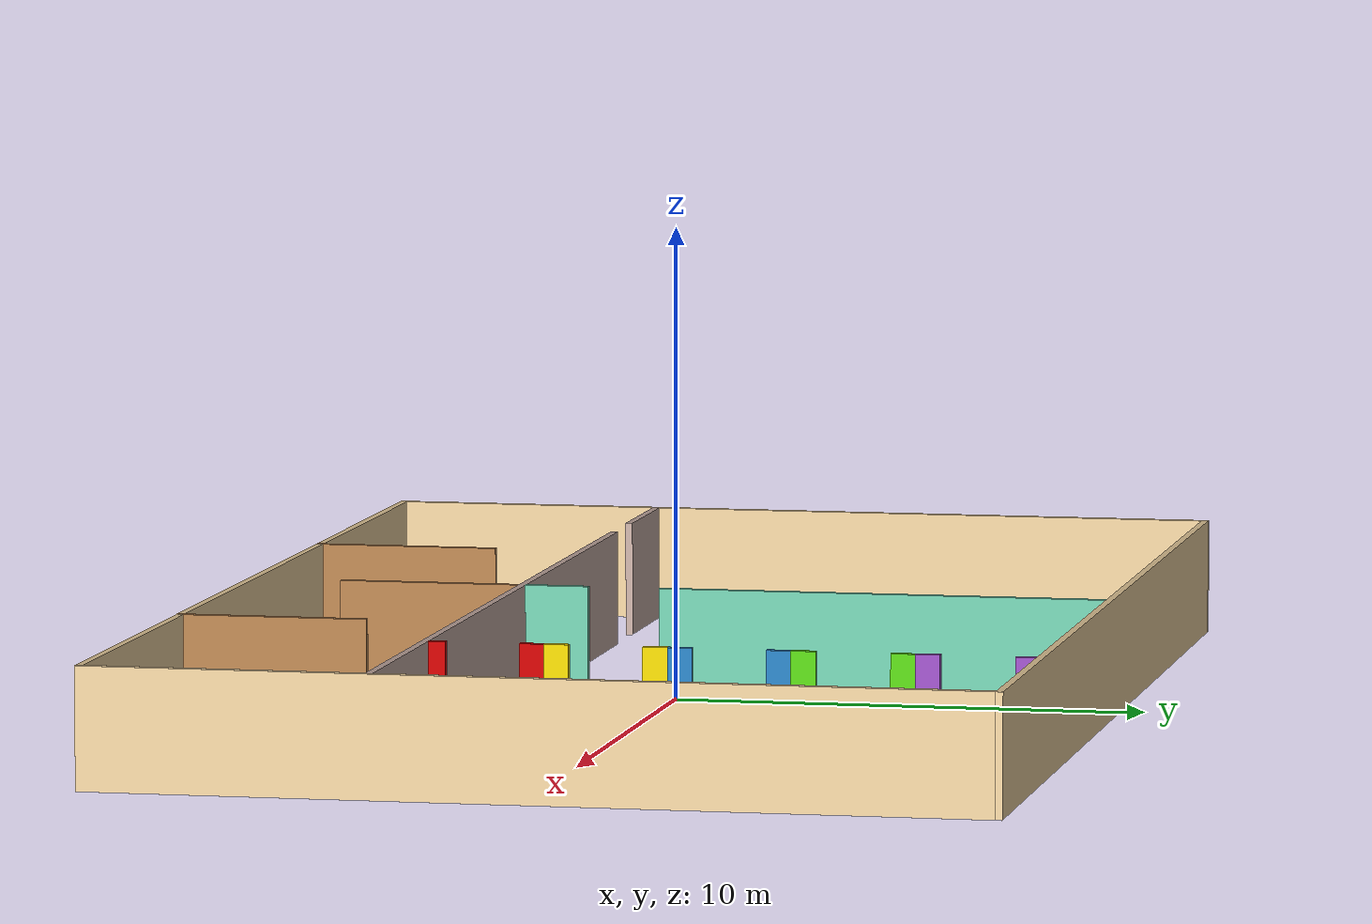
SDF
<?xml version='1.0'?>
<sdf version='1.6'>
  <model name='world1'>
    <pose frame=''>1.038 0.236278 0 0 -0 0</pose>
    <link name='Wall_0'>
      <collision name='Wall_0_Collision'>
        <geometry>
          <box>
            <size>28 0.15 2.5</size>
          </box>
        </geometry>
        <pose frame=''>0 0 1.25 0 -0 0</pose>
      </collision>
      <visual name='Wall_0_Visual'>
        <pose frame=''>0 0 1.25 0 -0 0</pose>
        <geometry>
          <box>
            <size>28 0.15 2.5</size>
          </box>
        </geometry>
        <material>
          <script>
            <uri>file://media/materials/scripts/gazebo.material</uri>
            <name>Gazebo/Grey</name>
          </script>
          <ambient>0.921569 0.807843 0.615686 1</ambient>
        </material>
        <meta>
          <layer>0</layer>
        </meta>
      </visual>
      <pose frame=''>0 -9.175 0 0 -0 0</pose>
    </link>
    <link name='Wall_10'>
      <collision name='Wall_10_Collision'>
        <geometry>
          <box>
            <size>18.5 0.15 2.5</size>
          </box>
        </geometry>
        <pose frame=''>0 0 1.25 0 -0 0</pose>
      </collision>
      <visual name='Wall_10_Visual'>
        <pose frame=''>0 0 1.25 0 -0 0</pose>
        <geometry>
          <box>
            <size>18.5 0.15 2.5</size>
          </box>
        </geometry>
        <material>
          <script>
            <uri>file://media/materials/scripts/gazebo.material</uri>
            <name>Gazebo/Grey</name>
          </script>
          <ambient>0.921569 0.807843 0.615686 1</ambient>
        </material>
        <meta>
          <layer>0</layer>
        </meta>
      </visual>
      <pose frame=''>-13.925 0 0 0 -0 1.5708</pose>
    </link>
    <link name='Wall_15'>
      <collision name='Wall_15_Collision'>
        <geometry>
          <box>
            <size>4 0.15 2.5</size>
          </box>
        </geometry>
        <pose frame=''>0 0 1.25 0 -0 0</pose>
      </collision>
      <visual name='Wall_15_Visual'>
        <pose frame=''>0 0 1.25 0 -0 0</pose>
        <geometry>
          <box>
            <size>4 0.15 2.5</size>
          </box>
        </geometry>
        <material>
          <script>
            <uri>file://media/materials/scripts/gazebo.material</uri>
            <name>Gazebo/Wood</name>
          </script>
          <ambient>1 1 1 1</ambient>
        </material>
        <meta>
          <layer>0</layer>
        </meta>
      </visual>
      <pose frame=''>6.05331 -7.24906 0 0 -0 -1.5708</pose>
    </link>
    <link name='Wall_19'>
      <collision name='Wall_19_Collision'>
        <geometry>
          <box>
            <size>4 0.15 2.5</size>
          </box>
        </geometry>
        <pose frame=''>0 0 1.25 0 -0 0</pose>
      </collision>
      <visual name='Wall_19_Visual'>
        <pose frame=''>0 0 1.25 0 -0 0</pose>
        <geometry>
          <box>
            <size>4 0.15 2.5</size>
          </box>
        </geometry>
        <material>
          <script>
            <uri>file://media/materials/scripts/gazebo.material</uri>
            <name>Gazebo/Wood</name>
          </script>
          <ambient>1 1 1 1</ambient>
        </material>
        <meta>
          <layer>0</layer>
        </meta>
      </visual>
      <pose frame=''>-5.91612 -7.23703 0 0 -0 -1.5708</pose>
    </link>
    <link name='Wall_22'>
      <collision name='Wall_22_Collision'>
        <geometry>
          <box>
            <size>4 0.15 2.5</size>
          </box>
        </geometry>
        <pose frame=''>0 0 1.25 0 -0 0</pose>
      </collision>
      <visual name='Wall_22_Visual'>
        <pose frame=''>0 0 1.25 0 -0 0</pose>
        <geometry>
          <box>
            <size>4 0.15 2.5</size>
          </box>
        </geometry>
        <material>
          <script>
            <uri>file://media/materials/scripts/gazebo.material</uri>
            <name>Gazebo/Wood</name>
          </script>
          <ambient>1 1 1 1</ambient>
        </material>
        <meta>
          <layer>0</layer>
        </meta>
      </visual>
      <pose frame=''>0.043144 -5.25298 0 0 -0 -1.5708</pose>
    </link>
    <link name='Wall_28'>
      <collision name='Wall_28_Collision'>
        <geometry>
          <box>
            <size>0.5 0.15 2.5</size>
          </box>
        </geometry>
        <pose frame=''>0 0 1.25 0 -0 0</pose>
      </collision>
      <visual name='Wall_28_Visual'>
        <pose frame=''>0 0 1.25 0 -0 0</pose>
        <geometry>
          <box>
            <size>0.5 0.15 2.5</size>
          </box>
        </geometry>
        <material>
          <script>
            <uri>file://media/materials/scripts/gazebo.material</uri>
            <name>Gazebo/Grey</name>
          </script>
          <ambient>0.8 0 0 1</ambient>
        </material>
        <meta>
          <layer>0</layer>
        </meta>
      </visual>
      <pose frame=''>9.02175 -3.14695 0 0 -0 1.5708</pose>
    </link>
    <link name='Wall_3'>
      <collision name='Wall_3_Collision'>
        <geometry>
          <box>
            <size>3 0.15 2.5</size>
          </box>
        </geometry>
        <pose frame=''>0 0 1.25 0 -0 0</pose>
      </collision>
      <visual name='Wall_3_Visual'>
        <pose frame=''>0 0 1.25 0 -0 0</pose>
        <geometry>
          <box>
            <size>3 0.15 2.5</size>
          </box>
        </geometry>
        <material>
          <script>
            <uri>file://media/materials/scripts/gazebo.material</uri>
            <name>Gazebo/Grey</name>
          </script>
          <ambient>0.760784 0.662745 0.627451 1</ambient>
        </material>
        <meta>
          <layer>0</layer>
        </meta>
      </visual>
      <pose frame=''>-12.3883 -3.32417 0 0 -0 0</pose>
    </link>
    <link name='Wall_34'>
      <collision name='Wall_34_Collision'>
        <geometry>
          <box>
            <size>0.5 0.15 2.5</size>
          </box>
        </geometry>
        <pose frame=''>0 0 1.25 0 -0 0</pose>
      </collision>
      <visual name='Wall_34_Visual'>
        <pose frame=''>0 0 1.25 0 -0 0</pose>
        <geometry>
          <box>
            <size>0.5 0.15 2.5</size>
          </box>
        </geometry>
        <material>
          <script>
            <uri>file://media/materials/scripts/gazebo.material</uri>
            <name>Gazebo/Grey</name>
          </script>
          <ambient>0.8 0 0 1</ambient>
        </material>
        <meta>
          <layer>0</layer>
        </meta>
      </visual>
      <pose frame=''>9.01979 -1.12465 0 0 -0 1.5708</pose>
    </link>
    <link name='Wall_36'>
      <collision name='Wall_36_Collision'>
        <geometry>
          <box>
            <size>0.5 0.15 2.5</size>
          </box>
        </geometry>
        <pose frame=''>0 0 1.25 0 -0 0</pose>
      </collision>
      <visual name='Wall_36_Visual'>
        <pose frame=''>0 0 1.25 0 -0 0</pose>
        <geometry>
          <box>
            <size>0.5 0.15 2.5</size>
          </box>
        </geometry>
        <material>
          <script>
            <uri>file://media/materials/scripts/gazebo.material</uri>
            <name>Gazebo/Grey</name>
          </script>
          <ambient>0.337255 0.823529 0.0784314 1</ambient>
        </material>
        <meta>
          <layer>0</layer>
        </meta>
      </visual>
      <pose frame=''>9.01168 6.41814 0 0 -0 -1.5708</pose>
    </link>
    <link name='Wall_38'>
      <collision name='Wall_38_Collision'>
        <geometry>
          <box>
            <size>0.5 0.15 2.5</size>
          </box>
        </geometry>
        <pose frame=''>0 0 1.25 0 -0 0</pose>
      </collision>
      <visual name='Wall_38_Visual'>
        <pose frame=''>0 0 1.25 0 -0 0</pose>
        <geometry>
          <box>
            <size>0.5 0.15 2.5</size>
          </box>
        </geometry>
        <material>
          <script>
            <uri>file://media/materials/scripts/gazebo.material</uri>
            <name>Gazebo/Grey</name>
          </script>
          <ambient>0.152941 0.490196 0.745098 1</ambient>
        </material>
        <meta>
          <layer>0</layer>
        </meta>
      </visual>
      <pose frame=''>9.0128 3.9049 0 0 -0 -1.5708</pose>
    </link>
    <link name='Wall_40'>
      <collision name='Wall_40_Collision'>
        <geometry>
          <box>
            <size>0.5 0.15 2.5</size>
          </box>
        </geometry>
        <pose frame=''>0 0 1.25 0 -0 0</pose>
      </collision>
      <visual name='Wall_40_Visual'>
        <pose frame=''>0 0 1.25 0 -0 0</pose>
        <geometry>
          <box>
            <size>0.5 0.15 2.5</size>
          </box>
        </geometry>
        <material>
          <script>
            <uri>file://media/materials/scripts/gazebo.material</uri>
            <name>Gazebo/Grey</name>
          </script>
          <ambient>0.152941 0.490196 0.745098 1</ambient>
        </material>
        <meta>
          <layer>0</layer>
        </meta>
      </visual>
      <pose frame=''>9.01751 1.89182 0 0 -0 -1.5708</pose>
    </link>
    <link name='Wall_42'>
      <collision name='Wall_42_Collision'>
        <geometry>
          <box>
            <size>0.5 0.15 2.5</size>
          </box>
        </geometry>
        <pose frame=''>0 0 1.25 0 -0 0</pose>
      </collision>
      <visual name='Wall_42_Visual'>
        <pose frame=''>0 0 1.25 0 -0 0</pose>
        <geometry>
          <box>
            <size>0.5 0.15 2.5</size>
          </box>
        </geometry>
        <material>
          <script>
            <uri>file://media/materials/scripts/gazebo.material</uri>
            <name>Gazebo/Grey</name>
          </script>
          <ambient>0.337255 0.823529 0.0784314 1</ambient>
        </material>
        <meta>
          <layer>0</layer>
        </meta>
      </visual>
      <pose frame=''>9.01261 4.40317 0 0 -0 -1.5708</pose>
    </link>
    <link name='Wall_44'>
      <collision name='Wall_44_Collision'>
        <geometry>
          <box>
            <size>0.5 0.15 2.5</size>
          </box>
        </geometry>
        <pose frame=''>0 0 1.25 0 -0 0</pose>
      </collision>
      <visual name='Wall_44_Visual'>
        <pose frame=''>0 0 1.25 0 -0 0</pose>
        <geometry>
          <box>
            <size>0.5 0.15 2.5</size>
          </box>
        </geometry>
        <material>
          <script>
            <uri>file://media/materials/scripts/gazebo.material</uri>
            <name>Gazebo/Grey</name>
          </script>
          <ambient>0.929412 0.831373 0 1</ambient>
        </material>
        <meta>
          <layer>0</layer>
        </meta>
      </visual>
      <pose frame=''>9.0178 1.39306 0 0 -0 -1.5708</pose>
    </link>
    <link name='Wall_46'>
      <collision name='Wall_46_Collision'>
        <geometry>
          <box>
            <size>0.5 0.15 2.5</size>
          </box>
        </geometry>
        <pose frame=''>0 0 1.25 0 -0 0</pose>
      </collision>
      <visual name='Wall_46_Visual'>
        <pose frame=''>0 0 1.25 0 -0 0</pose>
        <geometry>
          <box>
            <size>0.5 0.15 2.5</size>
          </box>
        </geometry>
        <material>
          <script>
            <uri>file://media/materials/scripts/gazebo.material</uri>
            <name>Gazebo/Grey</name>
          </script>
          <ambient>0.929412 0.831373 0 1</ambient>
        </material>
        <meta>
          <layer>0</layer>
        </meta>
      </visual>
      <pose frame=''>9.01956 -0.626449 0 0 -0 -1.5708</pose>
    </link>
    <link name='Wall_56'>
      <collision name='Wall_56_Collision'>
        <geometry>
          <box>
            <size>0.5 0.15 2.5</size>
          </box>
        </geometry>
        <pose frame=''>0 0 1.25 0 -0 0</pose>
      </collision>
      <visual name='Wall_56_Visual'>
        <pose frame=''>0 0 1.25 0 -0 0</pose>
        <geometry>
          <box>
            <size>0.5 0.15 2.5</size>
          </box>
        </geometry>
        <material>
          <script>
            <uri>file://media/materials/scripts/gazebo.material</uri>
            <name>Gazebo/Grey</name>
          </script>
          <ambient>0.596078 0.305882 0.756863 1</ambient>
        </material>
        <meta>
          <layer>0</layer>
        </meta>
      </visual>
      <pose frame=''>9.00835 8.93069 0 0 -0 -1.5708</pose>
    </link>
    <link name='Wall_58'>
      <collision name='Wall_58_Collision'>
        <geometry>
          <box>
            <size>0.5 0.15 2.5</size>
          </box>
        </geometry>
        <pose frame=''>0 0 1.25 0 -0 0</pose>
      </collision>
      <visual name='Wall_58_Visual'>
        <pose frame=''>0 0 1.25 0 -0 0</pose>
        <geometry>
          <box>
            <size>0.5 0.15 2.5</size>
          </box>
        </geometry>
        <material>
          <script>
            <uri>file://media/materials/scripts/gazebo.material</uri>
            <name>Gazebo/Grey</name>
          </script>
          <ambient>0.596078 0.305882 0.756863 1</ambient>
        </material>
        <meta>
          <layer>0</layer>
        </meta>
      </visual>
      <pose frame=''>9.01149 6.91537 0 0 -0 -1.5708</pose>
    </link>
    <link name='Wall_6'>
      <collision name='Wall_6_Collision'>
        <geometry>
          <box>
            <size>23.25 0.15 2.5</size>
          </box>
        </geometry>
        <pose frame=''>0 0 1.25 0 -0 0</pose>
      </collision>
      <visual name='Wall_6_Visual'>
        <pose frame=''>0 0 1.25 0 -0 0</pose>
        <geometry>
          <box>
            <size>23.25 0.15 2.5</size>
          </box>
        </geometry>
        <material>
          <script>
            <uri>file://media/materials/scripts/gazebo.material</uri>
            <name>Gazebo/Grey</name>
          </script>
          <ambient>0.760784 0.662745 0.627451 1</ambient>
        </material>
        <meta>
          <layer>0</layer>
        </meta>
      </visual>
      <pose frame=''>2.2875 -3.32364 0 0 -0 3.14159</pose>
    </link>
    <link name='Wall_60'>
      <collision name='Wall_60_Collision'>
        <geometry>
          <box>
            <size>28 0.15 2.5</size>
          </box>
        </geometry>
        <pose frame=''>0 0 1.25 0 -0 0</pose>
      </collision>
      <visual name='Wall_60_Visual'>
        <pose frame=''>0 0 1.25 0 -0 0</pose>
        <geometry>
          <box>
            <size>28 0.15 2.5</size>
          </box>
        </geometry>
        <material>
          <script>
            <uri>file://media/materials/scripts/gazebo.material</uri>
            <name>Gazebo/Grey</name>
          </script>
          <ambient>0.921569 0.807843 0.615686 1</ambient>
        </material>
        <meta>
          <layer>0</layer>
        </meta>
      </visual>
      <pose frame=''>0 9.175 0 0 -0 0</pose>
    </link>
    <link name='Wall_62'>
      <collision name='Wall_62_Collision'>
        <geometry>
          <box>
            <size>1.5 0.15 2.5</size>
          </box>
        </geometry>
        <pose frame=''>0 0 1.25 0 -0 0</pose>
      </collision>
      <visual name='Wall_62_Visual'>
        <pose frame=''>0 0 1.25 0 -0 0</pose>
        <geometry>
          <box>
            <size>1.5 0.15 2.5</size>
          </box>
        </geometry>
        <material>
          <script>
            <uri>file://media/materials/scripts/gazebo.material</uri>
            <name>Gazebo/Grey</name>
          </script>
          <ambient>0.435294 0.796078 0.67451 1</ambient>
        </material>
        <meta>
          <layer>0</layer>
        </meta>
      </visual>
      <pose frame=''>0.035098 -2.65298 0 0 -0 1.5708</pose>
    </link>
    <link name='Wall_74'>
      <collision name='Wall_74_Collision'>
        <geometry>
          <box>
            <size>9.5 0.15 2.5</size>
          </box>
        </geometry>
        <pose frame=''>0 0 1.25 0 -0 0</pose>
      </collision>
      <visual name='Wall_74_Visual'>
        <pose frame=''>0 0 1.25 0 -0 0</pose>
        <geometry>
          <box>
            <size>9.5 0.15 2.5</size>
          </box>
        </geometry>
        <material>
          <script>
            <uri>file://media/materials/scripts/gazebo.material</uri>
            <name>Gazebo/Grey</name>
          </script>
          <ambient>0.435294 0.796078 0.67451 1</ambient>
        </material>
        <meta>
          <layer>0</layer>
        </meta>
      </visual>
      <pose frame=''>0.030449 4.37829 0 0 -0 -1.5708</pose>
    </link>
    <link name='Wall_8'>
      <collision name='Wall_8_Collision'>
        <geometry>
          <box>
            <size>18.5 0.15 2.5</size>
          </box>
        </geometry>
        <pose frame=''>0 0 1.25 0 -0 0</pose>
      </collision>
      <visual name='Wall_8_Visual'>
        <pose frame=''>0 0 1.25 0 -0 0</pose>
        <geometry>
          <box>
            <size>18.5 0.15 2.5</size>
          </box>
        </geometry>
        <material>
          <script>
            <uri>file://media/materials/scripts/gazebo.material</uri>
            <name>Gazebo/Grey</name>
          </script>
          <ambient>0.921569 0.807843 0.615686 1</ambient>
        </material>
        <meta>
          <layer>0</layer>
        </meta>
      </visual>
      <pose frame=''>13.925 0 0 0 -0 1.5708</pose>
    </link>
    <static>1</static>
  </model>
</sdf>
